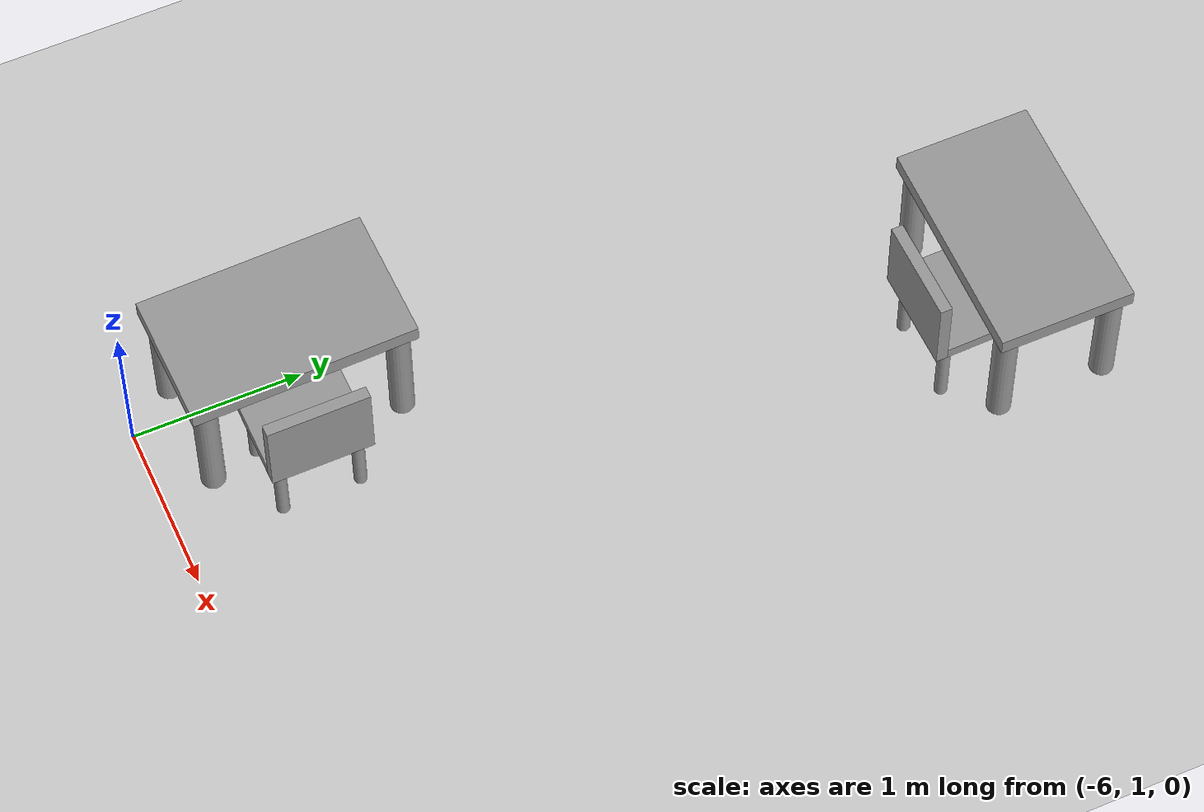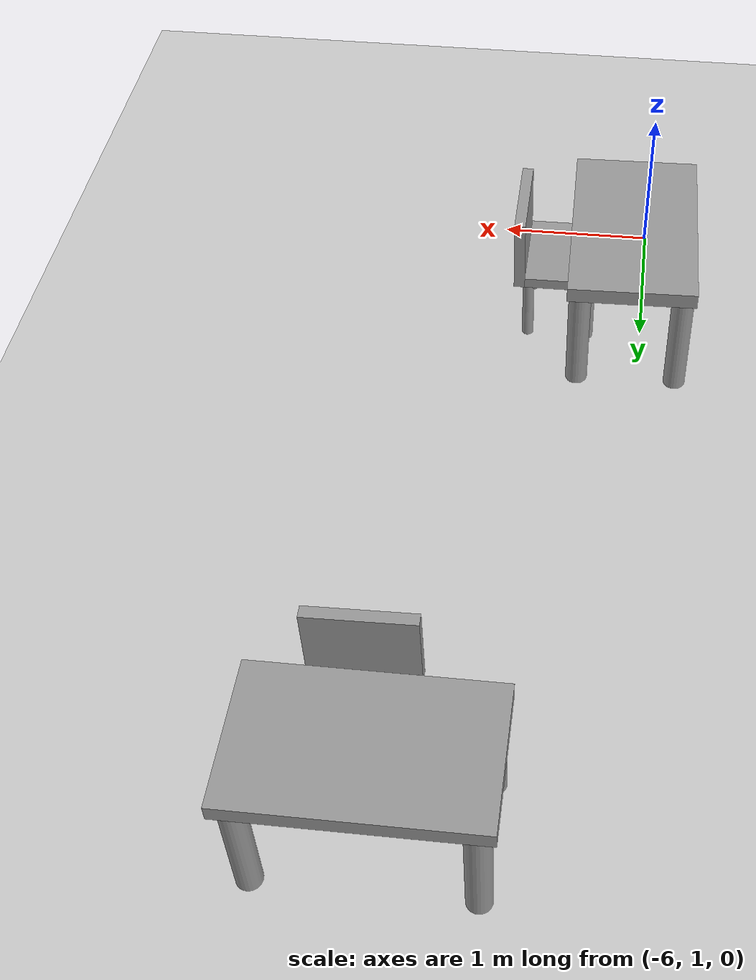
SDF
<sdf version="1.6">
 <world name="default">
  <model name="ground_plane">
   <static>1</static>
   <link name="link">
    <collision name="collision">
     <geometry><plane><normal>0 0 1</normal><size>100 100</size></plane></geometry>
     <surface>
      <contact><collide_bitmask>65535</collide_bitmask></contact>
      <friction><ode><mu>100</mu><mu2>50</mu2></ode></friction>
     </surface>
    </collision>
    <visual name="visual">
     <cast_shadows>0</cast_shadows>
     <geometry><plane><normal>0 0 1</normal><size>100 100</size></plane></geometry>
     <material>
      <script><uri>file://media/materials/scripts/gazebo.material</uri><name>Gazebo/Grey</name></script>
     </material>
    </visual>
   </link>
  </model>
  <model name="chair_3">
   <link name="link_0">
    <inertial>
     <mass>1</mass>
     <inertia>
      <ixx>0.166667</ixx>
      <ixy>0</ixy>
      <ixz>0</ixz>
      <iyy>0.166667</iyy>
      <iyz>0</iyz>
      <izz>0.166667</izz>
     </inertia>
    </inertial>
    <pose>-0.067504 0 0.137499 0 -0 0</pose>
    <visual name="visual">
     <geometry><box><size>0.5 0.6 0.07</size></box></geometry>
     <material>
      <lighting>1</lighting>
      <script><uri>file://media/materials/scripts/gazebo.material</uri><name>Gazebo/Grey</name></script>
      <shader type="pixel"><normal_map>__default__</normal_map></shader>
      <ambient>0.3 0.3 0.3 1</ambient>
      <diffuse>0.7 0.7 0.7 1</diffuse>
      <specular>0.01 0.01 0.01 1</specular>
      <emissive>0 0 0 1</emissive>
     </material>
    </visual>
    <collision name="collision">
     <geometry><box><size>0.5 0.6 0.07</size></box></geometry>
     <surface>
      <friction>
       <ode><mu>1</mu><mu2>1</mu2><fdir1>0 0 0</fdir1><slip1>0</slip1><slip2>0</slip2></ode>
       <torsional>
        <coefficient>1</coefficient>
        <patch_radius>0</patch_radius>
        <surface_radius>0</surface_radius>
        <use_patch_radius>1</use_patch_radius>
        <ode><slip>0</slip></ode>
       </torsional>
      </friction>
      <bounce><restitution_coefficient>0</restitution_coefficient><threshold>1e+06</threshold></bounce>
      <contact>
       <collide_without_contact>0</collide_without_contact>
       <collide_without_contact_bitmask>1</collide_without_contact_bitmask>
       <collide_bitmask>1</collide_bitmask>
       <ode>
        <soft_cfm>0</soft_cfm>
        <soft_erp>0.2</soft_erp>
        <kp>1e+13</kp>
        <kd>1</kd>
        <max_vel>0.01</max_vel>
        <min_depth>0</min_depth>
       </ode>
       <bullet>
        <split_impulse>1</split_impulse>
        <split_impulse_penetration_threshold>-0.01</split_impulse_penetration_threshold>
        <soft_cfm>0</soft_cfm>
        <soft_erp>0.2</soft_erp>
        <kp>1e+13</kp>
        <kd>1</kd>
       </bullet>
      </contact>
     </surface>
    </collision>
   </link>
   <link name="link_0_clone">
    <inertial>
     <mass>1</mass>
     <inertia>
      <ixx>0.166667</ixx>
      <ixy>0</ixy>
      <ixz>0</ixz>
      <iyy>0.166667</iyy>
      <iyz>0</iyz>
      <izz>0.166667</izz>
     </inertia>
    </inertial>
    <pose>0.21752 0 0.352503 0 1.5707 0</pose>
    <visual name="visual">
     <geometry><box><size>0.5 0.6 0.07</size></box></geometry>
     <material>
      <lighting>1</lighting>
      <script><uri>file://media/materials/scripts/gazebo.material</uri><name>Gazebo/Grey</name></script>
      <shader type="pixel"><normal_map>__default__</normal_map></shader>
      <ambient>0.3 0.3 0.3 1</ambient>
      <diffuse>0.7 0.7 0.7 1</diffuse>
      <specular>0.01 0.01 0.01 1</specular>
      <emissive>0 0 0 1</emissive>
     </material>
    </visual>
    <collision name="collision">
     <geometry><box><size>0.5 0.6 0.07</size></box></geometry>
     <surface>
      <friction>
       <ode><mu>1</mu><mu2>1</mu2><fdir1>0 0 0</fdir1><slip1>0</slip1><slip2>0</slip2></ode>
       <torsional>
        <coefficient>1</coefficient>
        <patch_radius>0</patch_radius>
        <surface_radius>0</surface_radius>
        <use_patch_radius>1</use_patch_radius>
        <ode><slip>0</slip></ode>
       </torsional>
      </friction>
      <bounce><restitution_coefficient>0</restitution_coefficient><threshold>1e+06</threshold></bounce>
      <contact>
       <collide_without_contact>0</collide_without_contact>
       <collide_without_contact_bitmask>1</collide_without_contact_bitmask>
       <collide_bitmask>1</collide_bitmask>
       <ode>
        <soft_cfm>0</soft_cfm>
        <soft_erp>0.2</soft_erp>
        <kp>1e+13</kp>
        <kd>1</kd>
        <max_vel>0.01</max_vel>
        <min_depth>0</min_depth>
       </ode>
       <bullet>
        <split_impulse>1</split_impulse>
        <split_impulse_penetration_threshold>-0.01</split_impulse_penetration_threshold>
        <soft_cfm>0</soft_cfm>
        <soft_erp>0.2</soft_erp>
        <kp>1e+13</kp>
        <kd>1</kd>
       </bullet>
      </contact>
     </surface>
    </collision>
   </link>
   <link name="link_1">
    <inertial>
     <mass>1</mass>
     <inertia><ixx>0.145833</ixx><ixy>0</ixy><ixz>0</ixz><iyy>0.145833</iyy><iyz>0</iyz><izz>0.125</izz></inertia>
    </inertial>
    <pose>-0.237504 -0.23 -0.122501 0 -0 0</pose>
    <visual name="visual">
     <geometry><cylinder><radius>0.037</radius><length>0.45</length></cylinder></geometry>
     <material>
      <lighting>1</lighting>
      <script><uri>file://media/materials/scripts/gazebo.material</uri><name>Gazebo/Grey</name></script>
      <shader type="pixel"><normal_map>__default__</normal_map></shader>
      <ambient>0.3 0.3 0.3 1</ambient>
      <diffuse>0.7 0.7 0.7 1</diffuse>
      <specular>0.01 0.01 0.01 1</specular>
      <emissive>0 0 0 1</emissive>
     </material>
    </visual>
    <collision name="collision">
     <geometry><cylinder><radius>0.037</radius><length>0.45</length></cylinder></geometry>
     <surface>
      <friction>
       <ode><mu>1</mu><mu2>1</mu2><fdir1>0 0 0</fdir1><slip1>0</slip1><slip2>0</slip2></ode>
       <torsional>
        <coefficient>1</coefficient>
        <patch_radius>0</patch_radius>
        <surface_radius>0</surface_radius>
        <use_patch_radius>1</use_patch_radius>
        <ode><slip>0</slip></ode>
       </torsional>
      </friction>
      <bounce><restitution_coefficient>0</restitution_coefficient><threshold>1e+06</threshold></bounce>
      <contact>
       <collide_without_contact>0</collide_without_contact>
       <collide_without_contact_bitmask>1</collide_without_contact_bitmask>
       <collide_bitmask>1</collide_bitmask>
       <ode>
        <soft_cfm>0</soft_cfm>
        <soft_erp>0.2</soft_erp>
        <kp>1e+13</kp>
        <kd>1</kd>
        <max_vel>0.01</max_vel>
        <min_depth>0</min_depth>
       </ode>
       <bullet>
        <split_impulse>1</split_impulse>
        <split_impulse_penetration_threshold>-0.01</split_impulse_penetration_threshold>
        <soft_cfm>0</soft_cfm>
        <soft_erp>0.2</soft_erp>
        <kp>1e+13</kp>
        <kd>1</kd>
       </bullet>
      </contact>
     </surface>
    </collision>
   </link>
   <link name="link_1_clone">
    <inertial>
     <mass>1</mass>
     <inertia><ixx>0.145833</ixx><ixy>0</ixy><ixz>0</ixz><iyy>0.145833</iyy><iyz>0</iyz><izz>0.125</izz></inertia>
    </inertial>
    <pose>-0.237504 0.23 -0.122501 0 -0 0</pose>
    <visual name="visual">
     <geometry><cylinder><radius>0.037</radius><length>0.45</length></cylinder></geometry>
     <material>
      <lighting>1</lighting>
      <script><uri>file://media/materials/scripts/gazebo.material</uri><name>Gazebo/Grey</name></script>
      <shader type="pixel"><normal_map>__default__</normal_map></shader>
      <ambient>0.3 0.3 0.3 1</ambient>
      <diffuse>0.7 0.7 0.7 1</diffuse>
      <specular>0.01 0.01 0.01 1</specular>
      <emissive>0 0 0 1</emissive>
     </material>
    </visual>
    <collision name="collision">
     <geometry><cylinder><radius>0.037</radius><length>0.45</length></cylinder></geometry>
     <surface>
      <friction>
       <ode><mu>1</mu><mu2>1</mu2><fdir1>0 0 0</fdir1><slip1>0</slip1><slip2>0</slip2></ode>
       <torsional>
        <coefficient>1</coefficient>
        <patch_radius>0</patch_radius>
        <surface_radius>0</surface_radius>
        <use_patch_radius>1</use_patch_radius>
        <ode><slip>0</slip></ode>
       </torsional>
      </friction>
      <bounce><restitution_coefficient>0</restitution_coefficient><threshold>1e+06</threshold></bounce>
      <contact>
       <collide_without_contact>0</collide_without_contact>
       <collide_without_contact_bitmask>1</collide_without_contact_bitmask>
       <collide_bitmask>1</collide_bitmask>
       <ode>
        <soft_cfm>0</soft_cfm>
        <soft_erp>0.2</soft_erp>
        <kp>1e+13</kp>
        <kd>1</kd>
        <max_vel>0.01</max_vel>
        <min_depth>0</min_depth>
       </ode>
       <bullet>
        <split_impulse>1</split_impulse>
        <split_impulse_penetration_threshold>-0.01</split_impulse_penetration_threshold>
        <soft_cfm>0</soft_cfm>
        <soft_erp>0.2</soft_erp>
        <kp>1e+13</kp>
        <kd>1</kd>
       </bullet>
      </contact>
     </surface>
    </collision>
   </link>
   <link name="link_1_clone_0">
    <inertial>
     <mass>1</mass>
     <inertia><ixx>0.145833</ixx><ixy>0</ixy><ixz>0</ixz><iyy>0.145833</iyy><iyz>0</iyz><izz>0.125</izz></inertia>
    </inertial>
    <pose>0.162496 0.23 -0.122501 0 -0 0</pose>
    <visual name="visual">
     <geometry><cylinder><radius>0.037</radius><length>0.45</length></cylinder></geometry>
     <material>
      <lighting>1</lighting>
      <script><uri>file://media/materials/scripts/gazebo.material</uri><name>Gazebo/Grey</name></script>
      <shader type="pixel"><normal_map>__default__</normal_map></shader>
      <ambient>0.3 0.3 0.3 1</ambient>
      <diffuse>0.7 0.7 0.7 1</diffuse>
      <specular>0.01 0.01 0.01 1</specular>
      <emissive>0 0 0 1</emissive>
     </material>
    </visual>
    <collision name="collision">
     <geometry><cylinder><radius>0.037</radius><length>0.45</length></cylinder></geometry>
     <surface>
      <friction>
       <ode><mu>1</mu><mu2>1</mu2><fdir1>0 0 0</fdir1><slip1>0</slip1><slip2>0</slip2></ode>
       <torsional>
        <coefficient>1</coefficient>
        <patch_radius>0</patch_radius>
        <surface_radius>0</surface_radius>
        <use_patch_radius>1</use_patch_radius>
        <ode><slip>0</slip></ode>
       </torsional>
      </friction>
      <bounce><restitution_coefficient>0</restitution_coefficient><threshold>1e+06</threshold></bounce>
      <contact>
       <collide_without_contact>0</collide_without_contact>
       <collide_without_contact_bitmask>1</collide_without_contact_bitmask>
       <collide_bitmask>1</collide_bitmask>
       <ode>
        <soft_cfm>0</soft_cfm>
        <soft_erp>0.2</soft_erp>
        <kp>1e+13</kp>
        <kd>1</kd>
        <max_vel>0.01</max_vel>
        <min_depth>0</min_depth>
       </ode>
       <bullet>
        <split_impulse>1</split_impulse>
        <split_impulse_penetration_threshold>-0.01</split_impulse_penetration_threshold>
        <soft_cfm>0</soft_cfm>
        <soft_erp>0.2</soft_erp>
        <kp>1e+13</kp>
        <kd>1</kd>
       </bullet>
      </contact>
     </surface>
    </collision>
   </link>
   <link name="link_1_clone_1">
    <inertial>
     <mass>1</mass>
     <inertia><ixx>0.145833</ixx><ixy>0</ixy><ixz>0</ixz><iyy>0.145833</iyy><iyz>0</iyz><izz>0.125</izz></inertia>
    </inertial>
    <pose>0.162496 -0.23 -0.122501 0 -0 0</pose>
    <visual name="visual">
     <geometry><cylinder><radius>0.037</radius><length>0.45</length></cylinder></geometry>
     <material>
      <lighting>1</lighting>
      <script><uri>file://media/materials/scripts/gazebo.material</uri><name>Gazebo/Grey</name></script>
      <shader type="pixel"><normal_map>__default__</normal_map></shader>
      <ambient>0.3 0.3 0.3 1</ambient>
      <diffuse>0.7 0.7 0.7 1</diffuse>
      <specular>0.01 0.01 0.01 1</specular>
      <emissive>0 0 0 1</emissive>
     </material>
    </visual>
    <collision name="collision">
     <geometry><cylinder><radius>0.037</radius><length>0.45</length></cylinder></geometry>
     <surface>
      <friction>
       <ode><mu>1</mu><mu2>1</mu2><fdir1>0 0 0</fdir1><slip1>0</slip1><slip2>0</slip2></ode>
       <torsional>
        <coefficient>1</coefficient>
        <patch_radius>0</patch_radius>
        <surface_radius>0</surface_radius>
        <use_patch_radius>1</use_patch_radius>
        <ode><slip>0</slip></ode>
       </torsional>
      </friction>
      <bounce><restitution_coefficient>0</restitution_coefficient><threshold>1e+06</threshold></bounce>
      <contact>
       <collide_without_contact>0</collide_without_contact>
       <collide_without_contact_bitmask>1</collide_without_contact_bitmask>
       <collide_bitmask>1</collide_bitmask>
       <ode>
        <soft_cfm>0</soft_cfm>
        <soft_erp>0.2</soft_erp>
        <kp>1e+13</kp>
        <kd>1</kd>
        <max_vel>0.01</max_vel>
        <min_depth>0</min_depth>
       </ode>
       <bullet>
        <split_impulse>1</split_impulse>
        <split_impulse_penetration_threshold>-0.01</split_impulse_penetration_threshold>
        <soft_cfm>0</soft_cfm>
        <soft_erp>0.2</soft_erp>
        <kp>1e+13</kp>
        <kd>1</kd>
       </bullet>
      </contact>
     </surface>
    </collision>
   </link>
   <joint name="link_0_JOINT_0" type="fixed">
    <parent>link_0</parent>
    <child>link_0_clone</child>
    <physics>
     <ode><limit><cfm>0</cfm><erp>0.2</erp></limit><suspension><cfm>0</cfm><erp>0.2</erp></suspension></ode>
    </physics>
   </joint>
   <joint name="link_0_JOINT_1" type="fixed">
    <parent>link_0</parent>
    <child>link_1</child>
    <physics>
     <ode><limit><cfm>0</cfm><erp>0.2</erp></limit><suspension><cfm>0</cfm><erp>0.2</erp></suspension></ode>
    </physics>
   </joint>
   <joint name="link_0_JOINT_2" type="fixed">
    <parent>link_0</parent>
    <child>link_1_clone_0</child>
    <physics>
     <ode><limit><cfm>0</cfm><erp>0.2</erp></limit><suspension><cfm>0</cfm><erp>0.2</erp></suspension></ode>
    </physics>
   </joint>
   <joint name="link_0_JOINT_3" type="fixed">
    <parent>link_0</parent>
    <child>link_1_clone</child>
    <physics>
     <ode><limit><cfm>0</cfm><erp>0.2</erp></limit><suspension><cfm>0</cfm><erp>0.2</erp></suspension></ode>
    </physics>
   </joint>
   <joint name="link_0_JOINT_4" type="fixed">
    <parent>link_0</parent>
    <child>link_1_clone_1</child>
    <physics>
     <ode><limit><cfm>0</cfm><erp>0.2</erp></limit><suspension><cfm>0</cfm><erp>0.2</erp></suspension></ode>
    </physics>
   </joint>
   <static>0</static>
   <pose>-5.40703 1.8239 0.347491 0 -0 0.006241</pose>
  </model>
  <model name="chair_4">
   <link name="link_0">
    <inertial>
     <mass>1</mass>
     <inertia>
      <ixx>0.166667</ixx>
      <ixy>0</ixy>
      <ixz>0</ixz>
      <iyy>0.166667</iyy>
      <iyz>0</iyz>
      <izz>0.166667</izz>
     </inertia>
    </inertial>
    <pose>-0.067504 0 0.137499 0 -0 0</pose>
    <visual name="visual">
     <geometry><box><size>0.5 0.6 0.07</size></box></geometry>
     <material>
      <lighting>1</lighting>
      <script><uri>file://media/materials/scripts/gazebo.material</uri><name>Gazebo/Grey</name></script>
      <shader type="pixel"><normal_map>__default__</normal_map></shader>
      <ambient>0.3 0.3 0.3 1</ambient>
      <diffuse>0.7 0.7 0.7 1</diffuse>
      <specular>0.01 0.01 0.01 1</specular>
      <emissive>0 0 0 1</emissive>
     </material>
    </visual>
    <collision name="collision">
     <geometry><box><size>0.5 0.6 0.07</size></box></geometry>
     <surface>
      <friction>
       <ode><mu>1</mu><mu2>1</mu2><fdir1>0 0 0</fdir1><slip1>0</slip1><slip2>0</slip2></ode>
       <torsional>
        <coefficient>1</coefficient>
        <patch_radius>0</patch_radius>
        <surface_radius>0</surface_radius>
        <use_patch_radius>1</use_patch_radius>
        <ode><slip>0</slip></ode>
       </torsional>
      </friction>
      <bounce><restitution_coefficient>0</restitution_coefficient><threshold>1e+06</threshold></bounce>
      <contact>
       <collide_without_contact>0</collide_without_contact>
       <collide_without_contact_bitmask>1</collide_without_contact_bitmask>
       <collide_bitmask>1</collide_bitmask>
       <ode>
        <soft_cfm>0</soft_cfm>
        <soft_erp>0.2</soft_erp>
        <kp>1e+13</kp>
        <kd>1</kd>
        <max_vel>0.01</max_vel>
        <min_depth>0</min_depth>
       </ode>
       <bullet>
        <split_impulse>1</split_impulse>
        <split_impulse_penetration_threshold>-0.01</split_impulse_penetration_threshold>
        <soft_cfm>0</soft_cfm>
        <soft_erp>0.2</soft_erp>
        <kp>1e+13</kp>
        <kd>1</kd>
       </bullet>
      </contact>
     </surface>
    </collision>
   </link>
   <link name="link_0_clone">
    <inertial>
     <mass>1</mass>
     <inertia>
      <ixx>0.166667</ixx>
      <ixy>0</ixy>
      <ixz>0</ixz>
      <iyy>0.166667</iyy>
      <iyz>0</iyz>
      <izz>0.166667</izz>
     </inertia>
    </inertial>
    <pose>0.21752 0 0.352503 0 1.5707 0</pose>
    <visual name="visual">
     <geometry><box><size>0.5 0.6 0.07</size></box></geometry>
     <material>
      <lighting>1</lighting>
      <script><uri>file://media/materials/scripts/gazebo.material</uri><name>Gazebo/Grey</name></script>
      <shader type="pixel"><normal_map>__default__</normal_map></shader>
      <ambient>0.3 0.3 0.3 1</ambient>
      <diffuse>0.7 0.7 0.7 1</diffuse>
      <specular>0.01 0.01 0.01 1</specular>
      <emissive>0 0 0 1</emissive>
     </material>
    </visual>
    <collision name="collision">
     <geometry><box><size>0.5 0.6 0.07</size></box></geometry>
     <surface>
      <friction>
       <ode><mu>1</mu><mu2>1</mu2><fdir1>0 0 0</fdir1><slip1>0</slip1><slip2>0</slip2></ode>
       <torsional>
        <coefficient>1</coefficient>
        <patch_radius>0</patch_radius>
        <surface_radius>0</surface_radius>
        <use_patch_radius>1</use_patch_radius>
        <ode><slip>0</slip></ode>
       </torsional>
      </friction>
      <bounce><restitution_coefficient>0</restitution_coefficient><threshold>1e+06</threshold></bounce>
      <contact>
       <collide_without_contact>0</collide_without_contact>
       <collide_without_contact_bitmask>1</collide_without_contact_bitmask>
       <collide_bitmask>1</collide_bitmask>
       <ode>
        <soft_cfm>0</soft_cfm>
        <soft_erp>0.2</soft_erp>
        <kp>1e+13</kp>
        <kd>1</kd>
        <max_vel>0.01</max_vel>
        <min_depth>0</min_depth>
       </ode>
       <bullet>
        <split_impulse>1</split_impulse>
        <split_impulse_penetration_threshold>-0.01</split_impulse_penetration_threshold>
        <soft_cfm>0</soft_cfm>
        <soft_erp>0.2</soft_erp>
        <kp>1e+13</kp>
        <kd>1</kd>
       </bullet>
      </contact>
     </surface>
    </collision>
   </link>
   <link name="link_1">
    <inertial>
     <mass>1</mass>
     <inertia><ixx>0.145833</ixx><ixy>0</ixy><ixz>0</ixz><iyy>0.145833</iyy><iyz>0</iyz><izz>0.125</izz></inertia>
    </inertial>
    <pose>-0.237504 -0.23 -0.122501 0 -0 0</pose>
    <visual name="visual">
     <geometry><cylinder><radius>0.037</radius><length>0.45</length></cylinder></geometry>
     <material>
      <lighting>1</lighting>
      <script><uri>file://media/materials/scripts/gazebo.material</uri><name>Gazebo/Grey</name></script>
      <shader type="pixel"><normal_map>__default__</normal_map></shader>
      <ambient>0.3 0.3 0.3 1</ambient>
      <diffuse>0.7 0.7 0.7 1</diffuse>
      <specular>0.01 0.01 0.01 1</specular>
      <emissive>0 0 0 1</emissive>
     </material>
    </visual>
    <collision name="collision">
     <geometry><cylinder><radius>0.037</radius><length>0.45</length></cylinder></geometry>
     <surface>
      <friction>
       <ode><mu>1</mu><mu2>1</mu2><fdir1>0 0 0</fdir1><slip1>0</slip1><slip2>0</slip2></ode>
       <torsional>
        <coefficient>1</coefficient>
        <patch_radius>0</patch_radius>
        <surface_radius>0</surface_radius>
        <use_patch_radius>1</use_patch_radius>
        <ode><slip>0</slip></ode>
       </torsional>
      </friction>
      <bounce><restitution_coefficient>0</restitution_coefficient><threshold>1e+06</threshold></bounce>
      <contact>
       <collide_without_contact>0</collide_without_contact>
       <collide_without_contact_bitmask>1</collide_without_contact_bitmask>
       <collide_bitmask>1</collide_bitmask>
       <ode>
        <soft_cfm>0</soft_cfm>
        <soft_erp>0.2</soft_erp>
        <kp>1e+13</kp>
        <kd>1</kd>
        <max_vel>0.01</max_vel>
        <min_depth>0</min_depth>
       </ode>
       <bullet>
        <split_impulse>1</split_impulse>
        <split_impulse_penetration_threshold>-0.01</split_impulse_penetration_threshold>
        <soft_cfm>0</soft_cfm>
        <soft_erp>0.2</soft_erp>
        <kp>1e+13</kp>
        <kd>1</kd>
       </bullet>
      </contact>
     </surface>
    </collision>
   </link>
   <link name="link_1_clone">
    <inertial>
     <mass>1</mass>
     <inertia><ixx>0.145833</ixx><ixy>0</ixy><ixz>0</ixz><iyy>0.145833</iyy><iyz>0</iyz><izz>0.125</izz></inertia>
    </inertial>
    <pose>-0.237504 0.23 -0.122501 0 -0 0</pose>
    <visual name="visual">
     <geometry><cylinder><radius>0.037</radius><length>0.45</length></cylinder></geometry>
     <material>
      <lighting>1</lighting>
      <script><uri>file://media/materials/scripts/gazebo.material</uri><name>Gazebo/Grey</name></script>
      <shader type="pixel"><normal_map>__default__</normal_map></shader>
      <ambient>0.3 0.3 0.3 1</ambient>
      <diffuse>0.7 0.7 0.7 1</diffuse>
      <specular>0.01 0.01 0.01 1</specular>
      <emissive>0 0 0 1</emissive>
     </material>
    </visual>
    <collision name="collision">
     <geometry><cylinder><radius>0.037</radius><length>0.45</length></cylinder></geometry>
     <surface>
      <friction>
       <ode><mu>1</mu><mu2>1</mu2><fdir1>0 0 0</fdir1><slip1>0</slip1><slip2>0</slip2></ode>
       <torsional>
        <coefficient>1</coefficient>
        <patch_radius>0</patch_radius>
        <surface_radius>0</surface_radius>
        <use_patch_radius>1</use_patch_radius>
        <ode><slip>0</slip></ode>
       </torsional>
      </friction>
      <bounce><restitution_coefficient>0</restitution_coefficient><threshold>1e+06</threshold></bounce>
      <contact>
       <collide_without_contact>0</collide_without_contact>
       <collide_without_contact_bitmask>1</collide_without_contact_bitmask>
       <collide_bitmask>1</collide_bitmask>
       <ode>
        <soft_cfm>0</soft_cfm>
        <soft_erp>0.2</soft_erp>
        <kp>1e+13</kp>
        <kd>1</kd>
        <max_vel>0.01</max_vel>
        <min_depth>0</min_depth>
       </ode>
       <bullet>
        <split_impulse>1</split_impulse>
        <split_impulse_penetration_threshold>-0.01</split_impulse_penetration_threshold>
        <soft_cfm>0</soft_cfm>
        <soft_erp>0.2</soft_erp>
        <kp>1e+13</kp>
        <kd>1</kd>
       </bullet>
      </contact>
     </surface>
    </collision>
   </link>
   <link name="link_1_clone_0">
    <inertial>
     <mass>1</mass>
     <inertia><ixx>0.145833</ixx><ixy>0</ixy><ixz>0</ixz><iyy>0.145833</iyy><iyz>0</iyz><izz>0.125</izz></inertia>
    </inertial>
    <pose>0.162496 0.23 -0.122501 0 -0 0</pose>
    <visual name="visual">
     <geometry><cylinder><radius>0.037</radius><length>0.45</length></cylinder></geometry>
     <material>
      <lighting>1</lighting>
      <script><uri>file://media/materials/scripts/gazebo.material</uri><name>Gazebo/Grey</name></script>
      <shader type="pixel"><normal_map>__default__</normal_map></shader>
      <ambient>0.3 0.3 0.3 1</ambient>
      <diffuse>0.7 0.7 0.7 1</diffuse>
      <specular>0.01 0.01 0.01 1</specular>
      <emissive>0 0 0 1</emissive>
     </material>
    </visual>
    <collision name="collision">
     <geometry><cylinder><radius>0.037</radius><length>0.45</length></cylinder></geometry>
     <surface>
      <friction>
       <ode><mu>1</mu><mu2>1</mu2><fdir1>0 0 0</fdir1><slip1>0</slip1><slip2>0</slip2></ode>
       <torsional>
        <coefficient>1</coefficient>
        <patch_radius>0</patch_radius>
        <surface_radius>0</surface_radius>
        <use_patch_radius>1</use_patch_radius>
        <ode><slip>0</slip></ode>
       </torsional>
      </friction>
      <bounce><restitution_coefficient>0</restitution_coefficient><threshold>1e+06</threshold></bounce>
      <contact>
       <collide_without_contact>0</collide_without_contact>
       <collide_without_contact_bitmask>1</collide_without_contact_bitmask>
       <collide_bitmask>1</collide_bitmask>
       <ode>
        <soft_cfm>0</soft_cfm>
        <soft_erp>0.2</soft_erp>
        <kp>1e+13</kp>
        <kd>1</kd>
        <max_vel>0.01</max_vel>
        <min_depth>0</min_depth>
       </ode>
       <bullet>
        <split_impulse>1</split_impulse>
        <split_impulse_penetration_threshold>-0.01</split_impulse_penetration_threshold>
        <soft_cfm>0</soft_cfm>
        <soft_erp>0.2</soft_erp>
        <kp>1e+13</kp>
        <kd>1</kd>
       </bullet>
      </contact>
     </surface>
    </collision>
   </link>
   <link name="link_1_clone_1">
    <inertial>
     <mass>1</mass>
     <inertia><ixx>0.145833</ixx><ixy>0</ixy><ixz>0</ixz><iyy>0.145833</iyy><iyz>0</iyz><izz>0.125</izz></inertia>
    </inertial>
    <pose>0.162496 -0.23 -0.122501 0 -0 0</pose>
    <visual name="visual">
     <geometry><cylinder><radius>0.037</radius><length>0.45</length></cylinder></geometry>
     <material>
      <lighting>1</lighting>
      <script><uri>file://media/materials/scripts/gazebo.material</uri><name>Gazebo/Grey</name></script>
      <shader type="pixel"><normal_map>__default__</normal_map></shader>
      <ambient>0.3 0.3 0.3 1</ambient>
      <diffuse>0.7 0.7 0.7 1</diffuse>
      <specular>0.01 0.01 0.01 1</specular>
      <emissive>0 0 0 1</emissive>
     </material>
    </visual>
    <collision name="collision">
     <geometry><cylinder><radius>0.037</radius><length>0.45</length></cylinder></geometry>
     <surface>
      <friction>
       <ode><mu>1</mu><mu2>1</mu2><fdir1>0 0 0</fdir1><slip1>0</slip1><slip2>0</slip2></ode>
       <torsional>
        <coefficient>1</coefficient>
        <patch_radius>0</patch_radius>
        <surface_radius>0</surface_radius>
        <use_patch_radius>1</use_patch_radius>
        <ode><slip>0</slip></ode>
       </torsional>
      </friction>
      <bounce><restitution_coefficient>0</restitution_coefficient><threshold>1e+06</threshold></bounce>
      <contact>
       <collide_without_contact>0</collide_without_contact>
       <collide_without_contact_bitmask>1</collide_without_contact_bitmask>
       <collide_bitmask>1</collide_bitmask>
       <ode>
        <soft_cfm>0</soft_cfm>
        <soft_erp>0.2</soft_erp>
        <kp>1e+13</kp>
        <kd>1</kd>
        <max_vel>0.01</max_vel>
        <min_depth>0</min_depth>
       </ode>
       <bullet>
        <split_impulse>1</split_impulse>
        <split_impulse_penetration_threshold>-0.01</split_impulse_penetration_threshold>
        <soft_cfm>0</soft_cfm>
        <soft_erp>0.2</soft_erp>
        <kp>1e+13</kp>
        <kd>1</kd>
       </bullet>
      </contact>
     </surface>
    </collision>
   </link>
   <joint name="link_0_JOINT_0" type="fixed">
    <parent>link_0</parent>
    <child>link_0_clone</child>
    <physics>
     <ode><limit><cfm>0</cfm><erp>0.2</erp></limit><suspension><cfm>0</cfm><erp>0.2</erp></suspension></ode>
    </physics>
   </joint>
   <joint name="link_0_JOINT_1" type="fixed">
    <parent>link_0</parent>
    <child>link_1</child>
    <physics>
     <ode><limit><cfm>0</cfm><erp>0.2</erp></limit><suspension><cfm>0</cfm><erp>0.2</erp></suspension></ode>
    </physics>
   </joint>
   <joint name="link_0_JOINT_2" type="fixed">
    <parent>link_0</parent>
    <child>link_1_clone_0</child>
    <physics>
     <ode><limit><cfm>0</cfm><erp>0.2</erp></limit><suspension><cfm>0</cfm><erp>0.2</erp></suspension></ode>
    </physics>
   </joint>
   <joint name="link_0_JOINT_3" type="fixed">
    <parent>link_0</parent>
    <child>link_1_clone</child>
    <physics>
     <ode><limit><cfm>0</cfm><erp>0.2</erp></limit><suspension><cfm>0</cfm><erp>0.2</erp></suspension></ode>
    </physics>
   </joint>
   <joint name="link_0_JOINT_4" type="fixed">
    <parent>link_0</parent>
    <child>link_1_clone_1</child>
    <physics>
     <ode><limit><cfm>0</cfm><erp>0.2</erp></limit><suspension><cfm>0</cfm><erp>0.2</erp></suspension></ode>
    </physics>
   </joint>
   <static>0</static>
   <pose>-4.70322 5.39539 0.3475 -0 -0 -1.55064</pose>
  </model>
  <model name="table_0">
   <link name="link_0">
    <inertial>
     <mass>1</mass>
     <inertia>
      <ixx>0.166667</ixx>
      <ixy>0</ixy>
      <ixz>0</ixz>
      <iyy>0.166667</iyy>
      <iyz>0</iyz>
      <izz>0.166667</izz>
     </inertia>
    </inertial>
    <pose>0 0 0.332 0 -0 0</pose>
    <visual name="visual">
     <geometry><box><size>0.8 1.33 0.1</size></box></geometry>
     <material>
      <lighting>1</lighting>
      <script><uri>file://media/materials/scripts/gazebo.material</uri><name>Gazebo/Grey</name></script>
      <shader type="pixel"><normal_map>__default__</normal_map></shader>
      <ambient>0.3 0.3 0.3 1</ambient>
      <diffuse>0.7 0.7 0.7 1</diffuse>
      <specular>0.01 0.01 0.01 1</specular>
      <emissive>0 0 0 1</emissive>
     </material>
    </visual>
    <collision name="collision">
     <geometry><box><size>0.8 1.33 0.1</size></box></geometry>
     <surface>
      <friction>
       <ode><mu>1</mu><mu2>1</mu2><fdir1>0 0 0</fdir1><slip1>0</slip1><slip2>0</slip2></ode>
       <torsional>
        <coefficient>1</coefficient>
        <patch_radius>0</patch_radius>
        <surface_radius>0</surface_radius>
        <use_patch_radius>1</use_patch_radius>
        <ode><slip>0</slip></ode>
       </torsional>
      </friction>
      <bounce><restitution_coefficient>0</restitution_coefficient><threshold>1e+06</threshold></bounce>
      <contact>
       <collide_without_contact>0</collide_without_contact>
       <collide_without_contact_bitmask>1</collide_without_contact_bitmask>
       <collide_bitmask>1</collide_bitmask>
       <ode>
        <soft_cfm>0</soft_cfm>
        <soft_erp>0.2</soft_erp>
        <kp>1e+13</kp>
        <kd>1</kd>
        <max_vel>0.01</max_vel>
        <min_depth>0</min_depth>
       </ode>
       <bullet>
        <split_impulse>1</split_impulse>
        <split_impulse_penetration_threshold>-0.01</split_impulse_penetration_threshold>
        <soft_cfm>0</soft_cfm>
        <soft_erp>0.2</soft_erp>
        <kp>1e+13</kp>
        <kd>1</kd>
       </bullet>
      </contact>
     </surface>
    </collision>
   </link>
   <link name="link_1">
    <inertial>
     <mass>1</mass>
     <inertia><ixx>0.145833</ixx><ixy>0</ixy><ixz>0</ixz><iyy>0.145833</iyy><iyz>0</iyz><izz>0.125</izz></inertia>
    </inertial>
    <pose>-0.32 0.57 -0.083 0 -0 0</pose>
    <visual name="visual">
     <geometry><cylinder><radius>0.07</radius><length>0.73</length></cylinder></geometry>
     <material>
      <lighting>1</lighting>
      <script><uri>file://media/materials/scripts/gazebo.material</uri><name>Gazebo/Grey</name></script>
      <shader type="pixel"><normal_map>__default__</normal_map></shader>
      <ambient>0.3 0.3 0.3 1</ambient>
      <diffuse>0.7 0.7 0.7 1</diffuse>
      <specular>0.01 0.01 0.01 1</specular>
      <emissive>0 0 0 1</emissive>
     </material>
    </visual>
    <collision name="collision">
     <geometry><cylinder><radius>0.07</radius><length>0.73</length></cylinder></geometry>
     <surface>
      <friction>
       <ode><mu>1</mu><mu2>1</mu2><fdir1>0 0 0</fdir1><slip1>0</slip1><slip2>0</slip2></ode>
       <torsional>
        <coefficient>1</coefficient>
        <patch_radius>0</patch_radius>
        <surface_radius>0</surface_radius>
        <use_patch_radius>1</use_patch_radius>
        <ode><slip>0</slip></ode>
       </torsional>
      </friction>
      <bounce><restitution_coefficient>0</restitution_coefficient><threshold>1e+06</threshold></bounce>
      <contact>
       <collide_without_contact>0</collide_without_contact>
       <collide_without_contact_bitmask>1</collide_without_contact_bitmask>
       <collide_bitmask>1</collide_bitmask>
       <ode>
        <soft_cfm>0</soft_cfm>
        <soft_erp>0.2</soft_erp>
        <kp>1e+13</kp>
        <kd>1</kd>
        <max_vel>0.01</max_vel>
        <min_depth>0</min_depth>
       </ode>
       <bullet>
        <split_impulse>1</split_impulse>
        <split_impulse_penetration_threshold>-0.01</split_impulse_penetration_threshold>
        <soft_cfm>0</soft_cfm>
        <soft_erp>0.2</soft_erp>
        <kp>1e+13</kp>
        <kd>1</kd>
       </bullet>
      </contact>
     </surface>
    </collision>
   </link>
   <link name="link_1_clone">
    <inertial>
     <mass>1</mass>
     <inertia><ixx>0.145833</ixx><ixy>0</ixy><ixz>0</ixz><iyy>0.145833</iyy><iyz>0</iyz><izz>0.125</izz></inertia>
    </inertial>
    <pose>-0.32 -0.57 -0.083 0 -0 0</pose>
    <visual name="visual">
     <geometry><cylinder><radius>0.07</radius><length>0.73</length></cylinder></geometry>
     <material>
      <lighting>1</lighting>
      <script><uri>file://media/materials/scripts/gazebo.material</uri><name>Gazebo/Grey</name></script>
      <shader type="pixel"><normal_map>__default__</normal_map></shader>
      <ambient>0.3 0.3 0.3 1</ambient>
      <diffuse>0.7 0.7 0.7 1</diffuse>
      <specular>0.01 0.01 0.01 1</specular>
      <emissive>0 0 0 1</emissive>
     </material>
    </visual>
    <collision name="collision">
     <geometry><cylinder><radius>0.07</radius><length>0.73</length></cylinder></geometry>
     <surface>
      <friction>
       <ode><mu>1</mu><mu2>1</mu2><fdir1>0 0 0</fdir1><slip1>0</slip1><slip2>0</slip2></ode>
       <torsional>
        <coefficient>1</coefficient>
        <patch_radius>0</patch_radius>
        <surface_radius>0</surface_radius>
        <use_patch_radius>1</use_patch_radius>
        <ode><slip>0</slip></ode>
       </torsional>
      </friction>
      <bounce><restitution_coefficient>0</restitution_coefficient><threshold>1e+06</threshold></bounce>
      <contact>
       <collide_without_contact>0</collide_without_contact>
       <collide_without_contact_bitmask>1</collide_without_contact_bitmask>
       <collide_bitmask>1</collide_bitmask>
       <ode>
        <soft_cfm>0</soft_cfm>
        <soft_erp>0.2</soft_erp>
        <kp>1e+13</kp>
        <kd>1</kd>
        <max_vel>0.01</max_vel>
        <min_depth>0</min_depth>
       </ode>
       <bullet>
        <split_impulse>1</split_impulse>
        <split_impulse_penetration_threshold>-0.01</split_impulse_penetration_threshold>
        <soft_cfm>0</soft_cfm>
        <soft_erp>0.2</soft_erp>
        <kp>1e+13</kp>
        <kd>1</kd>
       </bullet>
      </contact>
     </surface>
    </collision>
   </link>
   <link name="link_1_clone_0">
    <inertial>
     <mass>1</mass>
     <inertia><ixx>0.145833</ixx><ixy>0</ixy><ixz>0</ixz><iyy>0.145833</iyy><iyz>0</iyz><izz>0.125</izz></inertia>
    </inertial>
    <pose>0.32 0.57 -0.083 0 -0 0</pose>
    <visual name="visual">
     <geometry><cylinder><radius>0.07</radius><length>0.73</length></cylinder></geometry>
     <material>
      <lighting>1</lighting>
      <script><uri>file://media/materials/scripts/gazebo.material</uri><name>Gazebo/Grey</name></script>
      <shader type="pixel"><normal_map>__default__</normal_map></shader>
      <ambient>0.3 0.3 0.3 1</ambient>
      <diffuse>0.7 0.7 0.7 1</diffuse>
      <specular>0.01 0.01 0.01 1</specular>
      <emissive>0 0 0 1</emissive>
     </material>
    </visual>
    <collision name="collision">
     <geometry><cylinder><radius>0.07</radius><length>0.73</length></cylinder></geometry>
     <surface>
      <friction>
       <ode><mu>1</mu><mu2>1</mu2><fdir1>0 0 0</fdir1><slip1>0</slip1><slip2>0</slip2></ode>
       <torsional>
        <coefficient>1</coefficient>
        <patch_radius>0</patch_radius>
        <surface_radius>0</surface_radius>
        <use_patch_radius>1</use_patch_radius>
        <ode><slip>0</slip></ode>
       </torsional>
      </friction>
      <bounce><restitution_coefficient>0</restitution_coefficient><threshold>1e+06</threshold></bounce>
      <contact>
       <collide_without_contact>0</collide_without_contact>
       <collide_without_contact_bitmask>1</collide_without_contact_bitmask>
       <collide_bitmask>1</collide_bitmask>
       <ode>
        <soft_cfm>0</soft_cfm>
        <soft_erp>0.2</soft_erp>
        <kp>1e+13</kp>
        <kd>1</kd>
        <max_vel>0.01</max_vel>
        <min_depth>0</min_depth>
       </ode>
       <bullet>
        <split_impulse>1</split_impulse>
        <split_impulse_penetration_threshold>-0.01</split_impulse_penetration_threshold>
        <soft_cfm>0</soft_cfm>
        <soft_erp>0.2</soft_erp>
        <kp>1e+13</kp>
        <kd>1</kd>
       </bullet>
      </contact>
     </surface>
    </collision>
   </link>
   <link name="link_1_clone_1">
    <inertial>
     <mass>1</mass>
     <inertia><ixx>0.145833</ixx><ixy>0</ixy><ixz>0</ixz><iyy>0.145833</iyy><iyz>0</iyz><izz>0.125</izz></inertia>
    </inertial>
    <pose>0.32 -0.57 -0.083 0 -0 0</pose>
    <visual name="visual">
     <geometry><cylinder><radius>0.07</radius><length>0.73</length></cylinder></geometry>
     <material>
      <lighting>1</lighting>
      <script><uri>file://media/materials/scripts/gazebo.material</uri><name>Gazebo/Grey</name></script>
      <shader type="pixel"><normal_map>__default__</normal_map></shader>
      <ambient>0.3 0.3 0.3 1</ambient>
      <diffuse>0.7 0.7 0.7 1</diffuse>
      <specular>0.01 0.01 0.01 1</specular>
      <emissive>0 0 0 1</emissive>
     </material>
    </visual>
    <collision name="collision">
     <geometry><cylinder><radius>0.07</radius><length>0.73</length></cylinder></geometry>
     <surface>
      <friction>
       <ode><mu>1</mu><mu2>1</mu2><fdir1>0 0 0</fdir1><slip1>0</slip1><slip2>0</slip2></ode>
       <torsional>
        <coefficient>1</coefficient>
        <patch_radius>0</patch_radius>
        <surface_radius>0</surface_radius>
        <use_patch_radius>1</use_patch_radius>
        <ode><slip>0</slip></ode>
       </torsional>
      </friction>
      <bounce><restitution_coefficient>0</restitution_coefficient><threshold>1e+06</threshold></bounce>
      <contact>
       <collide_without_contact>0</collide_without_contact>
       <collide_without_contact_bitmask>1</collide_without_contact_bitmask>
       <collide_bitmask>1</collide_bitmask>
       <ode>
        <soft_cfm>0</soft_cfm>
        <soft_erp>0.2</soft_erp>
        <kp>1e+13</kp>
        <kd>1</kd>
        <max_vel>0.01</max_vel>
        <min_depth>0</min_depth>
       </ode>
       <bullet>
        <split_impulse>1</split_impulse>
        <split_impulse_penetration_threshold>-0.01</split_impulse_penetration_threshold>
        <soft_cfm>0</soft_cfm>
        <soft_erp>0.2</soft_erp>
        <kp>1e+13</kp>
        <kd>1</kd>
       </bullet>
      </contact>
     </surface>
    </collision>
   </link>
   <joint name="link_0_JOINT_0" type="fixed">
    <parent>link_0</parent>
    <child>link_1_clone</child>
    <physics>
     <ode><limit><cfm>0</cfm><erp>0.2</erp></limit><suspension><cfm>0</cfm><erp>0.2</erp></suspension></ode>
    </physics>
   </joint>
   <joint name="link_0_JOINT_1" type="fixed">
    <parent>link_0</parent>
    <child>link_1</child>
    <physics>
     <ode><limit><cfm>0</cfm><erp>0.2</erp></limit><suspension><cfm>0</cfm><erp>0.2</erp></suspension></ode>
    </physics>
   </joint>
   <joint name="link_0_JOINT_2" type="fixed">
    <parent>link_0</parent>
    <child>link_1_clone_1</child>
    <physics>
     <ode><limit><cfm>0</cfm><erp>0.2</erp></limit><suspension><cfm>0</cfm><erp>0.2</erp></suspension></ode>
    </physics>
   </joint>
   <joint name="link_0_JOINT_3" type="fixed">
    <parent>link_0</parent>
    <child>link_1_clone_0</child>
    <physics>
     <ode><limit><cfm>0</cfm><erp>0.2</erp></limit><suspension><cfm>0</cfm><erp>0.2</erp></suspension></ode>
    </physics>
   </joint>
   <static>0</static>
   <pose>-5.90852 1.87472 0.448 0 2e-06 0.022508</pose>
  </model>
  <model name="table_2">
   <link name="link_0">
    <inertial>
     <mass>1</mass>
     <inertia>
      <ixx>0.166667</ixx>
      <ixy>0</ixy>
      <ixz>0</ixz>
      <iyy>0.166667</iyy>
      <iyz>0</iyz>
      <izz>0.166667</izz>
     </inertia>
    </inertial>
    <pose>0 0 0.332 0 -0 0</pose>
    <visual name="visual">
     <geometry><box><size>0.8 1.33 0.1</size></box></geometry>
     <material>
      <lighting>1</lighting>
      <script><uri>file://media/materials/scripts/gazebo.material</uri><name>Gazebo/Grey</name></script>
      <shader type="pixel"><normal_map>__default__</normal_map></shader>
      <ambient>0.3 0.3 0.3 1</ambient>
      <diffuse>0.7 0.7 0.7 1</diffuse>
      <specular>0.01 0.01 0.01 1</specular>
      <emissive>0 0 0 1</emissive>
     </material>
    </visual>
    <collision name="collision">
     <geometry><box><size>0.8 1.33 0.1</size></box></geometry>
     <surface>
      <friction>
       <ode><mu>1</mu><mu2>1</mu2><fdir1>0 0 0</fdir1><slip1>0</slip1><slip2>0</slip2></ode>
       <torsional>
        <coefficient>1</coefficient>
        <patch_radius>0</patch_radius>
        <surface_radius>0</surface_radius>
        <use_patch_radius>1</use_patch_radius>
        <ode><slip>0</slip></ode>
       </torsional>
      </friction>
      <bounce><restitution_coefficient>0</restitution_coefficient><threshold>1e+06</threshold></bounce>
      <contact>
       <collide_without_contact>0</collide_without_contact>
       <collide_without_contact_bitmask>1</collide_without_contact_bitmask>
       <collide_bitmask>1</collide_bitmask>
       <ode>
        <soft_cfm>0</soft_cfm>
        <soft_erp>0.2</soft_erp>
        <kp>1e+13</kp>
        <kd>1</kd>
        <max_vel>0.01</max_vel>
        <min_depth>0</min_depth>
       </ode>
       <bullet>
        <split_impulse>1</split_impulse>
        <split_impulse_penetration_threshold>-0.01</split_impulse_penetration_threshold>
        <soft_cfm>0</soft_cfm>
        <soft_erp>0.2</soft_erp>
        <kp>1e+13</kp>
        <kd>1</kd>
       </bullet>
      </contact>
     </surface>
    </collision>
   </link>
   <link name="link_1">
    <inertial>
     <mass>1</mass>
     <inertia><ixx>0.145833</ixx><ixy>0</ixy><ixz>0</ixz><iyy>0.145833</iyy><iyz>0</iyz><izz>0.125</izz></inertia>
    </inertial>
    <pose>-0.32 0.57 -0.083 0 -0 0</pose>
    <visual name="visual">
     <geometry><cylinder><radius>0.07</radius><length>0.73</length></cylinder></geometry>
     <material>
      <lighting>1</lighting>
      <script><uri>file://media/materials/scripts/gazebo.material</uri><name>Gazebo/Grey</name></script>
      <shader type="pixel"><normal_map>__default__</normal_map></shader>
      <ambient>0.3 0.3 0.3 1</ambient>
      <diffuse>0.7 0.7 0.7 1</diffuse>
      <specular>0.01 0.01 0.01 1</specular>
      <emissive>0 0 0 1</emissive>
     </material>
    </visual>
    <collision name="collision">
     <geometry><cylinder><radius>0.07</radius><length>0.73</length></cylinder></geometry>
     <surface>
      <friction>
       <ode><mu>1</mu><mu2>1</mu2><fdir1>0 0 0</fdir1><slip1>0</slip1><slip2>0</slip2></ode>
       <torsional>
        <coefficient>1</coefficient>
        <patch_radius>0</patch_radius>
        <surface_radius>0</surface_radius>
        <use_patch_radius>1</use_patch_radius>
        <ode><slip>0</slip></ode>
       </torsional>
      </friction>
      <bounce><restitution_coefficient>0</restitution_coefficient><threshold>1e+06</threshold></bounce>
      <contact>
       <collide_without_contact>0</collide_without_contact>
       <collide_without_contact_bitmask>1</collide_without_contact_bitmask>
       <collide_bitmask>1</collide_bitmask>
       <ode>
        <soft_cfm>0</soft_cfm>
        <soft_erp>0.2</soft_erp>
        <kp>1e+13</kp>
        <kd>1</kd>
        <max_vel>0.01</max_vel>
        <min_depth>0</min_depth>
       </ode>
       <bullet>
        <split_impulse>1</split_impulse>
        <split_impulse_penetration_threshold>-0.01</split_impulse_penetration_threshold>
        <soft_cfm>0</soft_cfm>
        <soft_erp>0.2</soft_erp>
        <kp>1e+13</kp>
        <kd>1</kd>
       </bullet>
      </contact>
     </surface>
    </collision>
   </link>
   <link name="link_1_clone">
    <inertial>
     <mass>1</mass>
     <inertia><ixx>0.145833</ixx><ixy>0</ixy><ixz>0</ixz><iyy>0.145833</iyy><iyz>0</iyz><izz>0.125</izz></inertia>
    </inertial>
    <pose>-0.32 -0.57 -0.083 0 -0 0</pose>
    <visual name="visual">
     <geometry><cylinder><radius>0.07</radius><length>0.73</length></cylinder></geometry>
     <material>
      <lighting>1</lighting>
      <script><uri>file://media/materials/scripts/gazebo.material</uri><name>Gazebo/Grey</name></script>
      <shader type="pixel"><normal_map>__default__</normal_map></shader>
      <ambient>0.3 0.3 0.3 1</ambient>
      <diffuse>0.7 0.7 0.7 1</diffuse>
      <specular>0.01 0.01 0.01 1</specular>
      <emissive>0 0 0 1</emissive>
     </material>
    </visual>
    <collision name="collision">
     <geometry><cylinder><radius>0.07</radius><length>0.73</length></cylinder></geometry>
     <surface>
      <friction>
       <ode><mu>1</mu><mu2>1</mu2><fdir1>0 0 0</fdir1><slip1>0</slip1><slip2>0</slip2></ode>
       <torsional>
        <coefficient>1</coefficient>
        <patch_radius>0</patch_radius>
        <surface_radius>0</surface_radius>
        <use_patch_radius>1</use_patch_radius>
        <ode><slip>0</slip></ode>
       </torsional>
      </friction>
      <bounce><restitution_coefficient>0</restitution_coefficient><threshold>1e+06</threshold></bounce>
      <contact>
       <collide_without_contact>0</collide_without_contact>
       <collide_without_contact_bitmask>1</collide_without_contact_bitmask>
       <collide_bitmask>1</collide_bitmask>
       <ode>
        <soft_cfm>0</soft_cfm>
        <soft_erp>0.2</soft_erp>
        <kp>1e+13</kp>
        <kd>1</kd>
        <max_vel>0.01</max_vel>
        <min_depth>0</min_depth>
       </ode>
       <bullet>
        <split_impulse>1</split_impulse>
        <split_impulse_penetration_threshold>-0.01</split_impulse_penetration_threshold>
        <soft_cfm>0</soft_cfm>
        <soft_erp>0.2</soft_erp>
        <kp>1e+13</kp>
        <kd>1</kd>
       </bullet>
      </contact>
     </surface>
    </collision>
   </link>
   <link name="link_1_clone_0">
    <inertial>
     <mass>1</mass>
     <inertia><ixx>0.145833</ixx><ixy>0</ixy><ixz>0</ixz><iyy>0.145833</iyy><iyz>0</iyz><izz>0.125</izz></inertia>
    </inertial>
    <pose>0.32 0.57 -0.083 0 -0 0</pose>
    <visual name="visual">
     <geometry><cylinder><radius>0.07</radius><length>0.73</length></cylinder></geometry>
     <material>
      <lighting>1</lighting>
      <script><uri>file://media/materials/scripts/gazebo.material</uri><name>Gazebo/Grey</name></script>
      <shader type="pixel"><normal_map>__default__</normal_map></shader>
      <ambient>0.3 0.3 0.3 1</ambient>
      <diffuse>0.7 0.7 0.7 1</diffuse>
      <specular>0.01 0.01 0.01 1</specular>
      <emissive>0 0 0 1</emissive>
     </material>
    </visual>
    <collision name="collision">
     <geometry><cylinder><radius>0.07</radius><length>0.73</length></cylinder></geometry>
     <surface>
      <friction>
       <ode><mu>1</mu><mu2>1</mu2><fdir1>0 0 0</fdir1><slip1>0</slip1><slip2>0</slip2></ode>
       <torsional>
        <coefficient>1</coefficient>
        <patch_radius>0</patch_radius>
        <surface_radius>0</surface_radius>
        <use_patch_radius>1</use_patch_radius>
        <ode><slip>0</slip></ode>
       </torsional>
      </friction>
      <bounce><restitution_coefficient>0</restitution_coefficient><threshold>1e+06</threshold></bounce>
      <contact>
       <collide_without_contact>0</collide_without_contact>
       <collide_without_contact_bitmask>1</collide_without_contact_bitmask>
       <collide_bitmask>1</collide_bitmask>
       <ode>
        <soft_cfm>0</soft_cfm>
        <soft_erp>0.2</soft_erp>
        <kp>1e+13</kp>
        <kd>1</kd>
        <max_vel>0.01</max_vel>
        <min_depth>0</min_depth>
       </ode>
       <bullet>
        <split_impulse>1</split_impulse>
        <split_impulse_penetration_threshold>-0.01</split_impulse_penetration_threshold>
        <soft_cfm>0</soft_cfm>
        <soft_erp>0.2</soft_erp>
        <kp>1e+13</kp>
        <kd>1</kd>
       </bullet>
      </contact>
     </surface>
    </collision>
   </link>
   <link name="link_1_clone_1">
    <inertial>
     <mass>1</mass>
     <inertia><ixx>0.145833</ixx><ixy>0</ixy><ixz>0</ixz><iyy>0.145833</iyy><iyz>0</iyz><izz>0.125</izz></inertia>
    </inertial>
    <pose>0.32 -0.57 -0.083 0 -0 0</pose>
    <visual name="visual">
     <geometry><cylinder><radius>0.07</radius><length>0.73</length></cylinder></geometry>
     <material>
      <lighting>1</lighting>
      <script><uri>file://media/materials/scripts/gazebo.material</uri><name>Gazebo/Grey</name></script>
      <shader type="pixel"><normal_map>__default__</normal_map></shader>
      <ambient>0.3 0.3 0.3 1</ambient>
      <diffuse>0.7 0.7 0.7 1</diffuse>
      <specular>0.01 0.01 0.01 1</specular>
      <emissive>0 0 0 1</emissive>
     </material>
    </visual>
    <collision name="collision">
     <geometry><cylinder><radius>0.07</radius><length>0.73</length></cylinder></geometry>
     <surface>
      <friction>
       <ode><mu>1</mu><mu2>1</mu2><fdir1>0 0 0</fdir1><slip1>0</slip1><slip2>0</slip2></ode>
       <torsional>
        <coefficient>1</coefficient>
        <patch_radius>0</patch_radius>
        <surface_radius>0</surface_radius>
        <use_patch_radius>1</use_patch_radius>
        <ode><slip>0</slip></ode>
       </torsional>
      </friction>
      <bounce><restitution_coefficient>0</restitution_coefficient><threshold>1e+06</threshold></bounce>
      <contact>
       <collide_without_contact>0</collide_without_contact>
       <collide_without_contact_bitmask>1</collide_without_contact_bitmask>
       <collide_bitmask>1</collide_bitmask>
       <ode>
        <soft_cfm>0</soft_cfm>
        <soft_erp>0.2</soft_erp>
        <kp>1e+13</kp>
        <kd>1</kd>
        <max_vel>0.01</max_vel>
        <min_depth>0</min_depth>
       </ode>
       <bullet>
        <split_impulse>1</split_impulse>
        <split_impulse_penetration_threshold>-0.01</split_impulse_penetration_threshold>
        <soft_cfm>0</soft_cfm>
        <soft_erp>0.2</soft_erp>
        <kp>1e+13</kp>
        <kd>1</kd>
       </bullet>
      </contact>
     </surface>
    </collision>
   </link>
   <joint name="link_0_JOINT_0" type="fixed">
    <parent>link_0</parent>
    <child>link_1_clone</child>
    <physics>
     <ode><limit><cfm>0</cfm><erp>0.2</erp></limit><suspension><cfm>0</cfm><erp>0.2</erp></suspension></ode>
    </physics>
   </joint>
   <joint name="link_0_JOINT_1" type="fixed">
    <parent>link_0</parent>
    <child>link_1</child>
    <physics>
     <ode><limit><cfm>0</cfm><erp>0.2</erp></limit><suspension><cfm>0</cfm><erp>0.2</erp></suspension></ode>
    </physics>
   </joint>
   <joint name="link_0_JOINT_2" type="fixed">
    <parent>link_0</parent>
    <child>link_1_clone_1</child>
    <physics>
     <ode><limit><cfm>0</cfm><erp>0.2</erp></limit><suspension><cfm>0</cfm><erp>0.2</erp></suspension></ode>
    </physics>
   </joint>
   <joint name="link_0_JOINT_3" type="fixed">
    <parent>link_0</parent>
    <child>link_1_clone_0</child>
    <physics>
     <ode><limit><cfm>0</cfm><erp>0.2</erp></limit><suspension><cfm>0</cfm><erp>0.2</erp></suspension></ode>
    </physics>
   </joint>
   <static>0</static>
   <pose>-4.81911 5.8098 0.447996 1e-06 -4e-06 -1.5708</pose>
  </model>
 </world>
</sdf>
